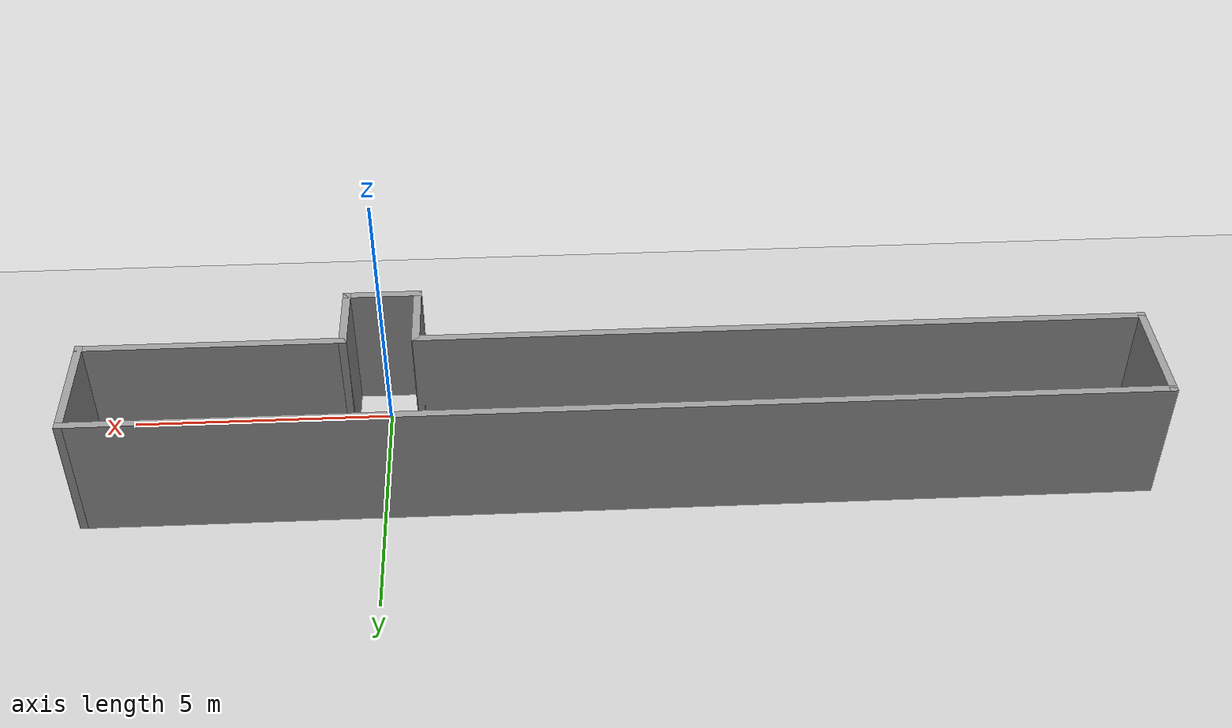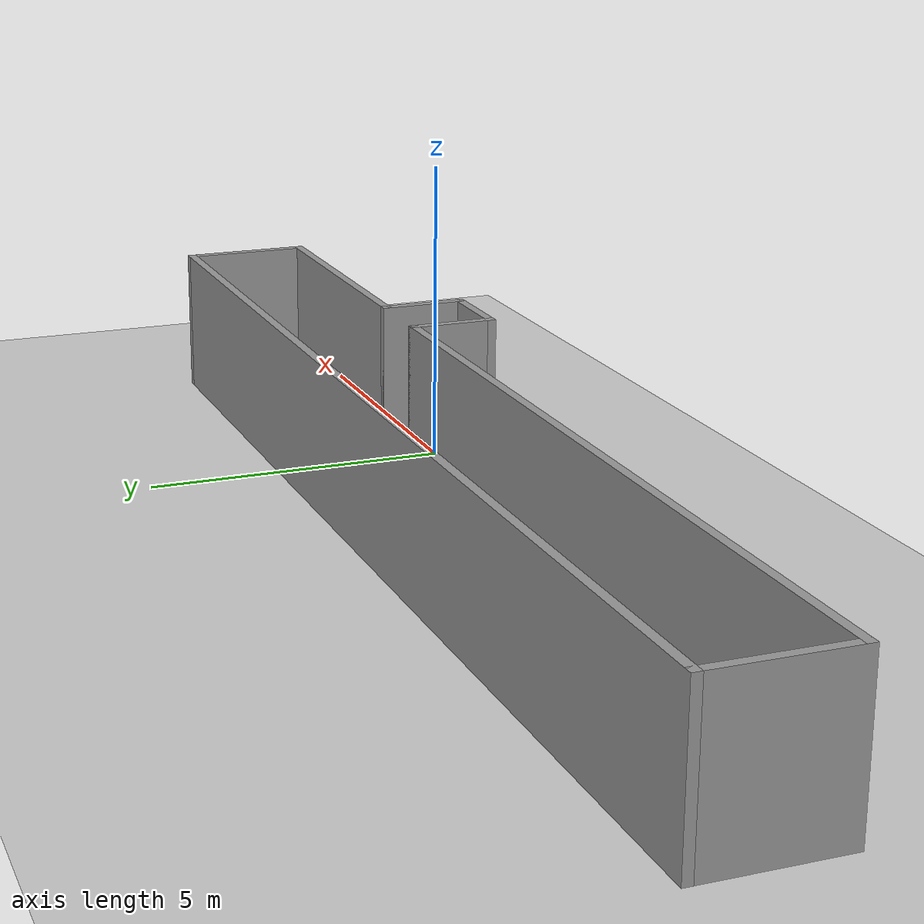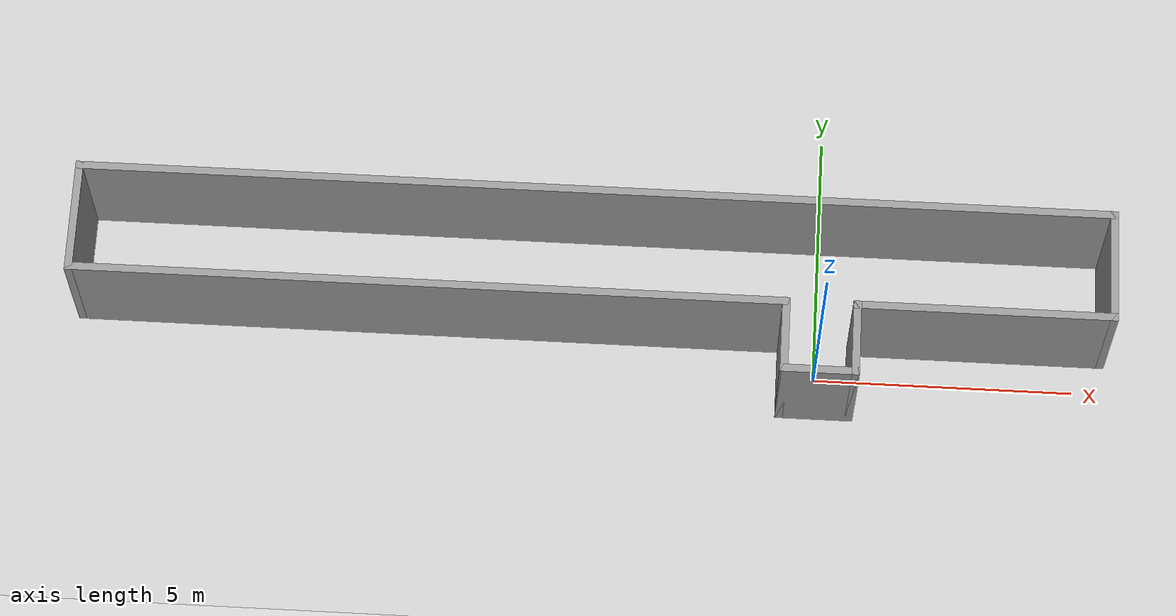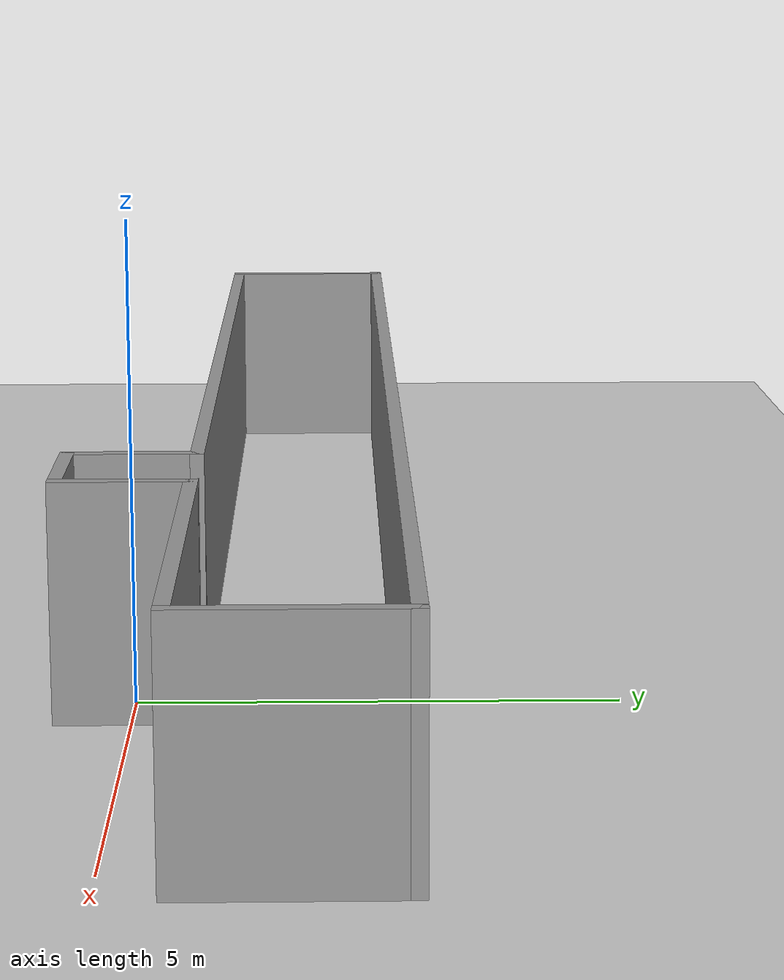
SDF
<sdf version="1.7">
 <world name="default">
  <light name="sun" type="directional">
   <pose>0 0 10 0 -0 0</pose>
   <diffuse>0.8 0.8 0.8 1</diffuse>
   <specular>0.2 0.2 0.2 1</specular>
   <attenuation>
    <range>1000</range>
    <constant>0.9</constant>
    <linear>0.01</linear>
    <quadratic>0.001</quadratic>
   </attenuation>
   <direction>-0.5 0.1 -0.9</direction>
   <spot><inner_angle>0</inner_angle><outer_angle>0</outer_angle><falloff>0</falloff></spot>
  </light>
  <model name="ground_plane">
   <static>1</static>
   <link name="link">
    <collision name="collision">
     <geometry><plane><normal>0 0 1</normal><size>100 100</size></plane></geometry>
     <surface>
      <contact><collide_bitmask>65535</collide_bitmask></contact>
      <friction><ode><mu>100</mu><mu2>50</mu2></ode></friction>
     </surface>
    </collision>
    <visual name="visual">
     <cast_shadows>0</cast_shadows>
     <geometry><plane><normal>0 0 1</normal><size>100 100</size></plane></geometry>
     <material>
      <script><uri>file://media/materials/scripts/gazebo.material</uri><name>Gazebo/Grey</name></script>
     </material>
    </visual>
   </link>
  </model>
  <gravity>0 0 -9.8</gravity>
  <magnetic_field>6e-06 2.3e-05 -4.2e-05</magnetic_field>
  <atmosphere type="adiabatic"/>
  <physics type="ode">
   <max_step_size>0.001</max_step_size>
   <real_time_factor>1</real_time_factor>
   <real_time_update_rate>1000</real_time_update_rate>
  </physics>
  <scene><ambient>0.4 0.4 0.4 1</ambient><background>0.7 0.7 0.7 1</background><shadows>1</shadows></scene>
  <audio><device>default</device></audio>
  <spherical_coordinates>
   <surface_model>EARTH_WGS84</surface_model>
   <latitude_deg>0</latitude_deg>
   <longitude_deg>0</longitude_deg>
   <elevation>0</elevation>
   <heading_deg>0</heading_deg>
  </spherical_coordinates>
  <model name="testworld4">
   <pose>-4.38648 2.1972 0 0 -0 0</pose>
   <link name="Wall_13">
    <collision name="Wall_13_Collision">
     <geometry><box><size>2.25 0.15 2.5</size></box></geometry>
     <pose>0 0 1.25 0 -0 0</pose>
    </collision>
    <visual name="Wall_13_Visual">
     <pose>0 0 1.25 0 -0 0</pose>
     <geometry><box><size>2.25 0.15 2.5</size></box></geometry>
     <material>
      <script><uri>file://media/materials/scripts/gazebo.material</uri><name>Gazebo/Grey</name></script>
      <ambient>1 1 1 1</ambient>
     </material>
     <meta><layer>0</layer></meta>
    </visual>
    <pose>9.925 -0.511922 0 0 -0 1.5708</pose>
   </link>
   <link name="Wall_15">
    <collision name="Wall_15_Collision">
     <geometry><box><size>20 0.15 2.5</size></box></geometry>
     <pose>0 0 1.25 0 -0 0</pose>
    </collision>
    <visual name="Wall_15_Visual">
     <pose>0 0 1.25 0 -0 0</pose>
     <geometry><box><size>20 0.15 2.5</size></box></geometry>
     <material>
      <script><uri>file://media/materials/scripts/gazebo.material</uri><name>Gazebo/Grey</name></script>
      <ambient>1 1 1 1</ambient>
     </material>
     <meta><layer>0</layer></meta>
    </visual>
    <pose>-0 0.538078 0 0 -0 3.14159</pose>
   </link>
   <link name="Wall_16">
    <collision name="Wall_16_Collision">
     <geometry><box><size>2.25 0.15 2.5</size></box></geometry>
     <pose>0 0 1.25 0 -0 0</pose>
    </collision>
    <visual name="Wall_16_Visual">
     <pose>0 0 1.25 0 -0 0</pose>
     <geometry><box><size>2.25 0.15 2.5</size></box></geometry>
     <material>
      <script><uri>file://media/materials/scripts/gazebo.material</uri><name>Gazebo/Grey</name></script>
      <ambient>1 1 1 1</ambient>
     </material>
     <meta><layer>0</layer></meta>
    </visual>
    <pose>-9.925 -0.511922 0 0 -0 -1.5708</pose>
   </link>
   <link name="Wall_17">
    <collision name="Wall_17_Collision">
     <geometry><box><size>13.8 0.15 2.5</size></box></geometry>
     <pose>0 0 1.25 0 -0 0</pose>
    </collision>
    <visual name="Wall_17_Visual">
     <pose>0 0 1.25 0 -0 0</pose>
     <geometry><box><size>13.8 0.15 2.5</size></box></geometry>
     <material>
      <script><uri>file://media/materials/scripts/gazebo.material</uri><name>Gazebo/Grey</name></script>
      <ambient>1 1 1 1</ambient>
     </material>
     <meta><layer>0</layer></meta>
    </visual>
    <pose>-3.1 -1.56192 0 0 -0 0</pose>
   </link>
   <link name="Wall_2">
    <collision name="Wall_2_Collision">
     <geometry><box><size>1.5 0.15 2.5</size></box></geometry>
     <pose>0 0 1.25 0 -0 0</pose>
    </collision>
    <visual name="Wall_2_Visual">
     <pose>0 0 1.25 0 -0 0</pose>
     <geometry><box><size>1.5 0.15 2.5</size></box></geometry>
     <material>
      <script><uri>file://media/materials/scripts/gazebo.material</uri><name>Gazebo/Grey</name></script>
      <ambient>1 1 1 1</ambient>
     </material>
     <meta><layer>0</layer></meta>
    </visual>
    <pose>4.4 -2.91192 0 0 -0 0</pose>
   </link>
   <link name="Wall_4">
    <collision name="Wall_4_Collision">
     <geometry><box><size>1.5 0.15 2.5</size></box></geometry>
     <pose>0 0 1.25 0 -0 0</pose>
    </collision>
    <visual name="Wall_4_Visual">
     <pose>0 0 1.25 0 -0 0</pose>
     <geometry><box><size>1.5 0.15 2.5</size></box></geometry>
     <material>
      <script><uri>file://media/materials/scripts/gazebo.material</uri><name>Gazebo/Grey</name></script>
      <ambient>1 1 1 1</ambient>
     </material>
     <meta><layer>0</layer></meta>
    </visual>
    <pose>3.725 -2.23692 0 0 -0 1.5708</pose>
   </link>
   <link name="Wall_6">
    <collision name="Wall_6_Collision">
     <geometry><box><size>1.5 0.15 2.5</size></box></geometry>
     <pose>0 0 1.25 0 -0 0</pose>
    </collision>
    <visual name="Wall_6_Visual">
     <pose>0 0 1.25 0 -0 0</pose>
     <geometry><box><size>1.5 0.15 2.5</size></box></geometry>
     <material>
      <script><uri>file://media/materials/scripts/gazebo.material</uri><name>Gazebo/Grey</name></script>
      <ambient>1 1 1 1</ambient>
     </material>
     <meta><layer>0</layer></meta>
    </visual>
    <pose>5.075 -2.23692 0 0 -0 1.5708</pose>
   </link>
   <link name="Wall_8">
    <collision name="Wall_8_Collision">
     <geometry><box><size>5 0.15 2.5</size></box></geometry>
     <pose>0 0 1.25 0 -0 0</pose>
    </collision>
    <visual name="Wall_8_Visual">
     <pose>0 0 1.25 0 -0 0</pose>
     <geometry><box><size>5 0.15 2.5</size></box></geometry>
     <material>
      <script><uri>file://media/materials/scripts/gazebo.material</uri><name>Gazebo/Grey</name></script>
      <ambient>1 1 1 1</ambient>
     </material>
     <meta><layer>0</layer></meta>
    </visual>
    <pose>7.5 -1.56192 0 0 -0 0</pose>
   </link>
   <static>1</static>
  </model>
 </world>
</sdf>
